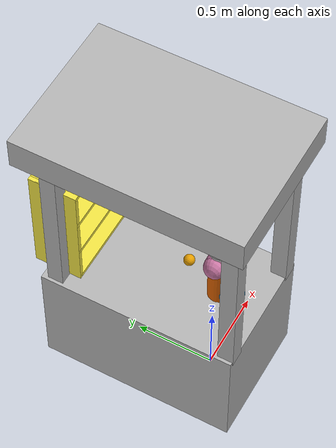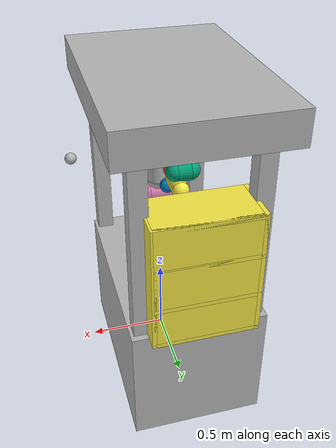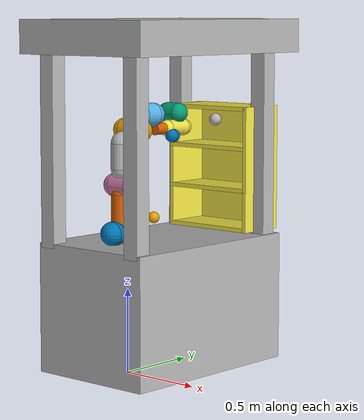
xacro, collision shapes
<?xml version='1.0' encoding='utf-8'?>
<robot xmlns:xacro="http://www.ros.org/wiki/xacro" name="panda">
  <link name="world"/>
  <link name="base_link"/>

  <xacro:arg name="arm_id" default="panda"/> <!-- Name of this panda -->
  <xacro:arg name="suction_ee" default="true"/>
  <xacro:arg name="robot_ip" default=""/> <!-- IP address or hostname of the robot" -->
  <xacro:arg name="use_fake_hardware" default="false"/>
  <xacro:arg name="fake_sensor_commands" default="false"/>

  <!-- Include workcell (creates joint from world to workcell_base)-->
  <xacro:include filename="$(find pick_and_place_support)/urdf/environment.xacro"/>
  <xacro:workcell parent_link="world" >
    <origin xyz="0.0 0.0 0.77153" rpy="0 0 0"/>
  </xacro:workcell >

  <xacro:cabinet id="1" parent_link="workcell_base" >
    <origin rpy="0 0 0" xyz="-0.3048 1.016 0.771525"/>
  </xacro:cabinet >

  <!-- Create joints -->
  <joint name="workcell_base_to_base" type="fixed">
    <parent link="workcell_base"/>
    <child link="base_link"/>
    <origin xyz="0 -0.0381 0.00953" rpy="0 0 1.5708"/>
  </joint>

  <xacro:include filename="$(find pick_and_place_support)/include/robot_description/panda_arm.xacro"/>
  <xacro:panda_arm arm_id="$(arg arm_id)" connected_to="base_link" safety_distance="0.01"/>

  <xacro:if value="$(arg suction_ee)">
    <xacro:include filename="$(find pick_and_place_support)/include/robot_description/suction_ee.xacro"/>
    <xacro:suction_ee ns="$(arg arm_id)" rpy="0 0 0" connected_to="$(arg arm_id)_link8" safety_distance="0.02"/>
  </xacro:if>

  <xacro:include filename="$(find pick_and_place_support)/include/robot_description/oak_d.xacro"/>
  <xacro:oak_d id="case_cam" rpy="0.375 0 0" xyz="0.1637786 -0.5589 0.736" connected_to="panda_link0"/>
  <xacro:oak_d id="fine_shelf_cam" rpy="${pi/2} 0 0" xyz=".2189801 -0.04 0.127" connected_to="panda_link0"/>
</robot>

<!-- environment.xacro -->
<robot name="environment" xmlns:xacro="http://www.ros.org/wiki/xacro">

<xacro:macro name="workcell" params="parent_link *location">

  <material name="light_gray">
    <color rgba="0.7 0.7 0.7 1"/>
  </material>
  <material name="red">
    <color rgba="1.0 0.1 0.1 1"/>
  </material>

  <link name="workcell_base">
    <visual>
      <geometry>
        <mesh filename="package://pick_and_place_support/meshes/workcell.STL"/>
      </geometry>
      <material name="light_gray"/>
    </visual>
    <collision name="workcell_table">
      <geometry>
        <box size="0.8 1.25 0.77153"/>
      </geometry>
      <origin xyz="0.0 0.3 -0.385765"/>
    </collision>
    <collision name="workcell_columnSW">
      <geometry>
        <box size="0.1 0.1 1.25"/>
      </geometry>
      <origin xyz="-.3302 -.2794 0.6"/>
    </collision>
    <collision name="workcell_columnsSE">
      <geometry>
        <box size="0.1 0.1 1.25"/>
      </geometry>
      <origin xyz=".3302 -.2794 0.6"/>
    </collision>
    <collision name="workcell_columnNW">
      <geometry>
        <box size="0.1 0.1 1.25"/>
      </geometry>
      <origin xyz="-.3302 0.8382 0.6"/>colors
    </collision>
    <collision name="workcell_columnNE">
      <geometry>
        <box size="0.1 0.1 1.25"/>
      </geometry>
      <origin xyz=".3302 0.8382 0.6"/>
    </collision>
    <collision name="workcell_top">
      <geometry>
        <box size="0.95 1.4 0.2"/>
      </geometry>
      <origin xyz="0.0 0.3 1.2"/>
    </collision>
  </link>

  <joint name="workcell_joint" type ="fixed">
    <xacro:insert_block name="location" />
    <parent link="${parent_link}"/>
    <child link="workcell_base"/>
  </joint>
</xacro:macro>

<!-- cabinet - Visual is in workcell_base.stl-->
<xacro:macro name="cabinet" params="id parent_link *location">
  <link name="cabinet_${id}">

<collision name="cabinet_${id}_back">
  <geometry>
    <box size="0.5969 0.0254 0.762"/>
  </geometry>
  <origin xyz=".2985 -.0127 -0.381"/>
</collision>
<collision name="cabinet_${id}_sideL">
  <geometry>
    <box size="0.0254 0.3048 0.762"/>
  </geometry>
  <origin xyz="0.0127 -0.1524 -0.381"/>
</collision>
<collision name="cabinet_${id}_sideR">
<geometry>
  <box size="0.0254 0.3048 0.762"/>
</geometry>
<origin xyz="0.5969 -0.1524 -0.381"/>
</collision>
<collision name="cabinet_${id}_cabinet1">
     <geometry>
          <box size="0.5969 0.3048 0.0254"/>
    </geometry>
    <origin xyz=".2985 -0.1524  -0.7493"/>
</collision>
<collision name="cabinet_${id}_cabinet2">
    <geometry>
        <box size="0.5969 0.3048 0.0254"/>
    </geometry>
    <origin xyz=".2985 -0.1524  -0.508"/>
</collision>
<collision name="cabinet_${id}_cabinet3">
    <geometry>
        <box size="0.5969 0.3048 0.0254"/>
    </geometry>
    <origin xyz=".2985 -0.1524  -0.254"/>
</collision>
<collision name="cabinet_${id}_cabinet4">
    <geometry>
        <box size="0.5969 0.3048 0.0254"/>
    </geometry>
    <origin xyz=".2985 -0.1524  -0.0127"/>
</collision>

  </link>
<joint name="cabinet_${id}_joint" type ="fixed">
  <xacro:insert_block name="location" />
  <parent link="${parent_link}"/>
  <child link="cabinet_${id}"/>
</joint>

</xacro:macro>

<!-- Shelf - Not currently used-->
<xacro:macro name="shelf" params="id parent_link *location">
  <link name="shelf_${id}">
  <visual>
    <geometry>
      <mesh filename="package://pick_and_place_support/meshes/shelf.STL"/>
    </geometry>
    <material name="light_gray"/>
  </visual>

    <collision name="shelf_${id}_back">
      <geometry>
        <box size="0.9144 0.05 1.8288"/>
      </geometry>
      <origin xyz="0.4572 0.0 0.9144"/>
    </collision>
    <collision name="shelf_${id}_sideL">
      <geometry>
        <box size="0.05 0.5096 1.8288"/>
      </geometry>
      <origin xyz="0.025 0.22 0.9144"/>
    </collision>
    <collision name="shelf_${id}_sideR">
      <geometry>
        <box size="0.05 0.5096 1.8288"/>
      </geometry>
      <origin xyz=".945 0.22 0.9144"/>
    </collision>
    <collision name="shelf_${id}_shelf1">
      <geometry>
        <box size="0.9144 0.5096 0.05"/>
      </geometry>
      <origin xyz=".4572 0.22 0.025"/>
    </collision>
    <collision name="shelf_${id}_shelf2">
      <geometry>
        <box size="0.9144 0.5096 0.05"/>
      </geometry>
      <origin xyz=".4572 0.22 0.6346"/>
    </collision>
    <collision name="shelf_${id}_shelf3">
      <geometry>
        <box size="0.9144 0.5096 0.05"/>
      </geometry>
      <origin xyz=".4572 0.22 1.2442"/>
    </collision>
    <collision name="shelf_${id}_shelf4">
       <geometry>
         <box size="0.9144 0.5096 0.05"/>
       </geometry>
       <origin xyz=".4572 0.22 1.8038"/>
    </collision>
  </link>

  <joint name="shelf_${id}_joint" type ="fixed">
    <xacro:insert_block name="location" />
    <parent link="${parent_link}"/>
    <child link="shelf_${id}"/>
  </joint>

</xacro:macro>

</robot>

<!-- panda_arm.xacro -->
<robot xmlns:xacro="http://www.ros.org/wiki/xacro" name="panda">
  <!-- safety_distance: Minimum safety distance in [m] by which the collision volumes are expanded and which is enforced during robot motions -->
  <!-- arm_id: Namespace of the panda arm. Serves to differentiate between arms in case of multiple instances. -->
  <xacro:macro name="panda_arm" params="arm_id:='panda' description_pkg:='franka_description' connected_to:='' xyz:='0 0 0' rpy:='0 0 0' safety_distance:=0">
    <xacro:unless value="${not connected_to}">
      <joint name="${arm_id}_joint_${connected_to}" type="fixed">
        <parent link="${connected_to}"/>
        <child link="${arm_id}_link0"/>
        <origin rpy="${rpy}" xyz="${xyz}"/>
      </joint>
    </xacro:unless>
    <link name="${arm_id}_link0">
      <visual>
        <geometry>
          <mesh filename="package://${description_pkg}/meshes/visual/link0.dae"/>
        </geometry>
      </visual>
      <collision>
        <origin xyz="-0.075 0 0.06" rpy="0 ${pi/2} 0"/>
        <geometry>
          <cylinder radius="${0.06+safety_distance}" length="0.03" />
        </geometry>
      </collision>
      <collision>
        <origin xyz="-0.06 0 0.06" rpy="0 0 0"/>
        <geometry>
          <sphere radius="${0.06+safety_distance}" />
        </geometry>
      </collision>
      <collision>
        <origin xyz="-0.09 0 0.06" rpy="0 0 0"/>
        <geometry>
          <sphere radius="${0.06+safety_distance}" />
        </geometry>
      </collision>
    </link>
    <link name="${arm_id}_link1">
      <visual>
        <geometry>
          <mesh filename="package://${description_pkg}/meshes/visual/link1.dae"/>
        </geometry>
      </visual>
      <collision>
        <origin xyz="0 0 -0.1915" rpy="0 0 0"/>
        <geometry>
          <cylinder radius="${0.06+safety_distance}" length="0.2830" />
        </geometry>
      </collision>
      <collision>
        <origin xyz="0 0 -0.05" rpy="0 0 0"/>
        <geometry>
          <sphere radius="${0.06+safety_distance}" />
        </geometry>
      </collision>
    </link>
    <joint name="${arm_id}_joint1" type="revolute">
      <safety_controller k_position="100.0" k_velocity="40.0" soft_lower_limit="-2.8973" soft_upper_limit="2.8973"/>
      <origin rpy="0 0 0" xyz="0 0 0.333"/>
      <parent link="${arm_id}_link0"/>
      <child link="${arm_id}_link1"/>
      <axis xyz="0 0 1"/>
      <limit effort="87" lower="-2.8973" upper="2.8973" velocity="2.1750"/>
    </joint>
    <link name="${arm_id}_link2">
      <visual>
        <geometry>
          <mesh filename="package://${description_pkg}/meshes/visual/link2.dae"/>
        </geometry>
      </visual>
      <collision>
        <origin xyz="0 0 0" rpy="0 0 0"/>
        <geometry>
          <cylinder radius="${0.06+safety_distance}" length="0.12" />
        </geometry>
      </collision>
      <collision>
        <origin xyz="0 0 -0.06" rpy="0 0 0"/>
        <geometry>
          <sphere radius="${0.06+safety_distance}" />
        </geometry>
      </collision>
      <collision>
        <origin xyz="0 0 0.06" rpy="0 0 0"/>
        <geometry>
          <sphere radius="${0.06+safety_distance}" />
        </geometry>
      </collision>
    </link>
    <joint name="${arm_id}_joint2" type="revolute">
      <safety_controller k_position="100.0" k_velocity="40.0" soft_lower_limit="-1.7628" soft_upper_limit="1.7628"/>
      <origin rpy="${-pi/2} 0 0" xyz="0 0 0"/>
      <parent link="${arm_id}_link1"/>
      <child link="${arm_id}_link2"/>
      <axis xyz="0 0 1"/>
      <limit effort="87" lower="-1.7628" upper="1.7628" velocity="2.1750"/>
    </joint>
    <link name="${arm_id}_link3">
      <visual>
        <geometry>
          <mesh filename="package://${description_pkg}/meshes/visual/link3.dae"/>
        </geometry>
      </visual>
      <collision>
        <origin xyz="0 0 -0.145" rpy="0 0 0"/>
        <geometry>
          <cylinder radius="${0.06+safety_distance}" length="0.15" />
        </geometry>
      </collision>
      <collision>
        <origin xyz="0 0 -0.22" rpy="0 0 0"/>
        <geometry>
          <sphere radius="${0.06+safety_distance}" />
        </geometry>
      </collision>
      <collision>
        <origin xyz="0 0 -0.07" rpy="0 0 0"/>
        <geometry>
          <sphere radius="${0.06+safety_distance}" />
        </geometry>
      </collision>
    </link>
    <joint name="${arm_id}_joint3" type="revolute">
      <safety_controller k_position="100.0" k_velocity="40.0" soft_lower_limit="-2.8973" soft_upper_limit="2.8973"/>
      <origin rpy="${pi/2} 0 0" xyz="0 -0.316 0"/>
      <parent link="${arm_id}_link2"/>
      <child link="${arm_id}_link3"/>
      <axis xyz="0 0 1"/>
      <limit effort="87" lower="-2.8973" upper="2.8973" velocity="2.1750"/>
    </joint>
    <link name="${arm_id}_link4">
      <visual>
        <geometry>
          <mesh filename="package://${description_pkg}/meshes/visual/link4.dae"/>
        </geometry>
      </visual>
      <collision>
        <origin xyz="0 0 0" rpy="0 0 0"/>
        <geometry>
          <cylinder radius="${0.06+safety_distance}" length="0.12" />
        </geometry>
      </collision>
      <collision>
        <origin xyz="0 0 0.06" rpy="0 0 0"/>
        <geometry>
          <sphere radius="${0.06+safety_distance}" />
        </geometry>
      </collision>
      <collision>
        <origin xyz="0 0 -0.06" rpy="0 0 0"/>
        <geometry>
          <sphere radius="${0.06+safety_distance}" />
        </geometry>
      </collision>
    </link>
    <joint name="${arm_id}_joint4" type="revolute">
      <safety_controller k_position="100.0" k_velocity="40.0" soft_lower_limit="-3.0718" soft_upper_limit="-0.0698"/>
      <origin rpy="${pi/2} 0 0" xyz="0.0825 0 0"/>
      <parent link="${arm_id}_link3"/>
      <child link="${arm_id}_link4"/>
      <axis xyz="0 0 1"/>
      <limit effort="87" lower="-3.0718" upper="-0.0698" velocity="2.1750"/>
    </joint>
    <link name="${arm_id}_link5">
      <visual>
        <geometry>
          <mesh filename="package://${description_pkg}/meshes/visual/link5.dae"/>
        </geometry>
      </visual>
      <collision>
        <origin xyz="0 0 -0.26" rpy="0 0 0"/>
        <geometry>
          <cylinder radius="${0.06+safety_distance}" length="0.1" />
        </geometry>
      </collision>
      <collision>
        <origin xyz="0 0 -0.31" rpy="0 0 0"/>
        <geometry>
          <sphere radius="${0.06+safety_distance}" />
        </geometry>
      </collision>
      <collision>
        <origin xyz="0 0 -0.21" rpy="0 0 0"/>
        <geometry>
          <sphere radius="${0.06+safety_distance}" />
        </geometry>
      </collision>
      <collision>
        <origin xyz="0 0.08 -0.13" rpy="0 0 0"/>
        <geometry>
          <cylinder radius="${0.025+safety_distance}" length="0.14" />
        </geometry>
      </collision>
      <collision>
        <origin xyz="0 0.08 -0.06" rpy="0 0 0"/>
        <geometry>
          <sphere radius="${0.025+safety_distance}" />
        </geometry>
      </collision>
      <collision>
        <origin xyz="0 0.08 -0.20" rpy="0 0 0"/>
        <geometry>
          <sphere radius="${0.025+safety_distance}" />
        </geometry>
      </collision>

    </link>
    <joint name="${arm_id}_joint5" type="revolute">
      <safety_controller k_position="100.0" k_velocity="40.0" soft_lower_limit="-2.8973" soft_upper_limit="2.8973"/>
      <origin rpy="${-pi/2} 0 0" xyz="-0.0825 0.384 0"/>
      <parent link="${arm_id}_link4"/>
      <child link="${arm_id}_link5"/>
      <axis xyz="0 0 1"/>
      <limit effort="12" lower="-2.8973" upper="2.8973" velocity="2.6100"/>
    </joint>
    <link name="${arm_id}_link6">
      <visual>
        <geometry>
          <mesh filename="package://${description_pkg}/meshes/visual/link6.dae"/>
        </geometry>
      </visual>
      <collision>
        <origin xyz="0 0 -0.03" rpy="0 0 0"/>
        <geometry>
          <cylinder radius="${0.05+safety_distance}" length="0.08" />
        </geometry>
      </collision>
      <collision>
        <origin xyz="0 0 0.01" rpy="0 0 0"/>
        <geometry>
          <sphere radius="${0.05+safety_distance}" />
        </geometry>
      </collision>
      <collision>
        <origin xyz="0 0 -0.07" rpy="0 0 0"/>
        <geometry>
          <sphere radius="${0.05+safety_distance}" />
        </geometry>
      </collision>
    </link>
    <joint name="${arm_id}_joint6" type="revolute">
      <safety_controller k_position="100.0" k_velocity="40.0" soft_lower_limit="-0.0175" soft_upper_limit="3.7525"/>
      <origin rpy="${pi/2} 0 0" xyz="0 0 0"/>
      <parent link="${arm_id}_link5"/>
      <child link="${arm_id}_link6"/>
      <axis xyz="0 0 1"/>
      <limit effort="12" lower="-0.0175" upper="3.7525" velocity="2.6100"/>
    </joint>
    <link name="${arm_id}_link7">
      <visual>
        <geometry>
          <mesh filename="package://${description_pkg}/meshes/visual/link7.dae"/>
        </geometry>
      </visual>
      <collision>
        <origin xyz="0 0 0.01" rpy="0 0 0"/>
        <geometry>
          <cylinder radius="${0.04+safety_distance}" length="0.14" />
        </geometry>
      </collision>
      <collision>
        <origin xyz="0 0 0.08" rpy="0 0 0"/>
        <geometry>
          <sphere radius="${0.04+safety_distance}"  />
        </geometry>
      </collision>
      <collision>
        <origin xyz="0 0 -0.06" rpy="0 0 0"/>
        <geometry>
          <sphere radius="${0.04+safety_distance}"  />
        </geometry>
      </collision>
    </link>
    <joint name="${arm_id}_joint7" type="revolute">
      <safety_controller k_position="100.0" k_velocity="40.0" soft_lower_limit="-2.8973" soft_upper_limit="2.8973"/>
      <origin rpy="${pi/2} 0 0" xyz="0.088 0 0"/>
      <parent link="${arm_id}_link6"/>
      <child link="${arm_id}_link7"/>
      <axis xyz="0 0 1"/>
      <limit effort="12" lower="-2.8973" upper="2.8973" velocity="2.6100"/>
    </joint>
    <link name="${arm_id}_link8">
      <collision>
        <origin xyz="0.0424 0.0424 -0.0250" rpy="${pi} ${pi/2} ${pi/2}"/>
        <geometry>
          <cylinder radius="${0.03+safety_distance}"  length="0.01" />
        </geometry>
      </collision>
      <collision>
        <origin xyz="0.0424 0.0424 -0.02" rpy="0 0 0"/>
        <geometry>
          <sphere radius="${0.03+safety_distance}"  />
        </geometry>
      </collision>
      <collision>
        <origin xyz="0.0424 0.0424 -0.03" rpy="0 0 0"/>
        <geometry>
          <sphere radius="${0.03+safety_distance}"  />
        </geometry>
      </collision>
    </link>
    <joint name="${arm_id}_joint8" type="fixed">
      <origin rpy="0 0 0" xyz="0 0 0.107"/>
      <parent link="${arm_id}_link7"/>
      <child link="${arm_id}_link8"/>
    </joint>
  </xacro:macro>
</robot>

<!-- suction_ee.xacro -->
<robot xmlns:xacro="http://www.ros.org/wiki/xacro" name="suction_ee">
  <!-- safety_distance: Minimum safety distance in [m] by which the collision volumes are expanded and which is enforced during robot motions -->
  <xacro:macro name="suction_ee" params="connected_to:='' ns:='' rpy:='0 0 0' xyz:='0 0 0' safety_distance:=0">
    <xacro:unless value="${connected_to == ''}">
      <joint name="${ns}_suction_ee_joint" type="fixed">
        <parent link="${connected_to}"/>
        <child link="${ns}_suction_ee"/>
        <origin xyz="${xyz}" rpy="${rpy}"/>
      </joint>
    </xacro:unless>
    <link name="${ns}_suction_ee">
      <visual>
        <origin xyz="-0.03429 0.03429 0" rpy="${pi/2} 0 0"/>
        <geometry>
          <mesh filename="package://pick_and_place_support/include/robot_description/suction_ee.stl"/>
        </geometry>
      </visual>
      <collision>
        <origin xyz="0 0 ${0.091154/2}" rpy="0 0 0"/>
        <geometry>
          <cylinder radius="0.03429" length="0.091154" />
        </geometry>
      </collision>
    </link>
    <!-- Define the hand_tcp frame. This is a virtual  -->
    <link name="${ns}_ee_tcp" />
    <joint name="${ns}_hand_tcp_joint" type="fixed">
      <origin xyz="0 0 0.091154" rpy="0 0 0" />
      <parent link="${ns}_suction_ee" />
      <child link="${ns}_ee_tcp" />
    </joint>
  </xacro:macro>
</robot>

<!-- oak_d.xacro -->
<robot xmlns:xacro="http://www.ros.org/wiki/xacro" name="panda">
  <!-- safety_distance: Minimum safety distance in [m] by which the collision volumes are expanded and which is enforced during robot motions -->
  <xacro:macro name="oak_d" params="connected_to:='' rpy:='0 0 0' xyz:='0 0 0' safety_distance:=0 id:='oak_d_default'">
    <xacro:unless value="${connected_to == ''}">
      <joint name="${id}_joint" type="fixed">
        <parent link="${connected_to}"/>
        <child link="${id}"/>
        <origin xyz="${xyz}" rpy="${rpy}"/>
      </joint>
    </xacro:unless>
    <link name="${id}">
      <visual>
        <origin xyz="0 0 0" rpy="0 ${pi} 0"/>
        <geometry>
          <mesh filename="package://pick_and_place_support/include/robot_description/oak-d-camera.stl"/>
        </geometry>
      </visual>
      <collision>
        <origin xyz="0 0 0" rpy="0 0 0"/>
        <geometry>
          <sphere radius="0.03429" />
        </geometry>
      </collision>
    </link>
  </xacro:macro>
</robot>
